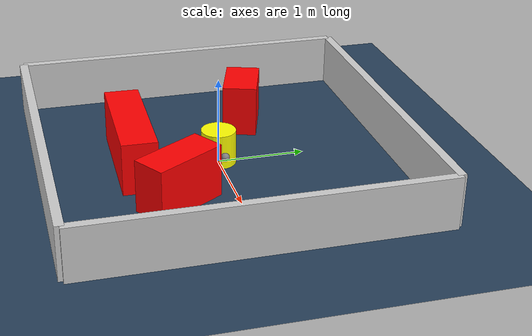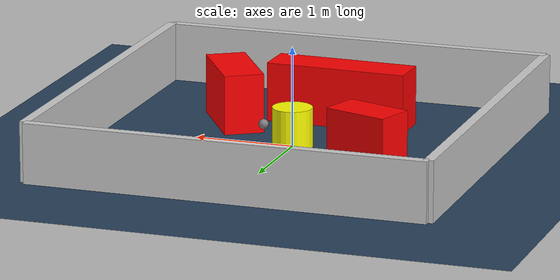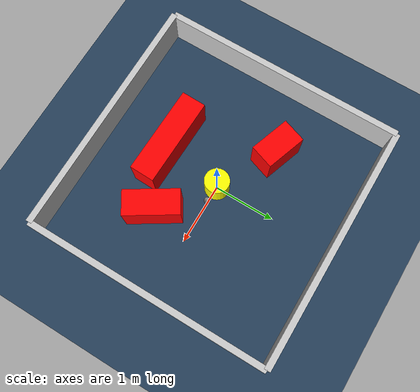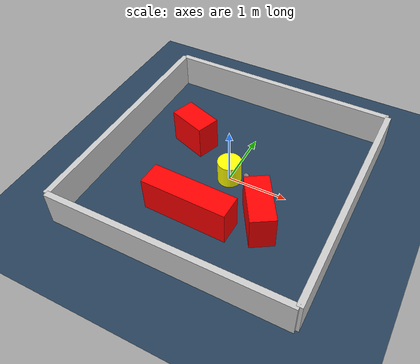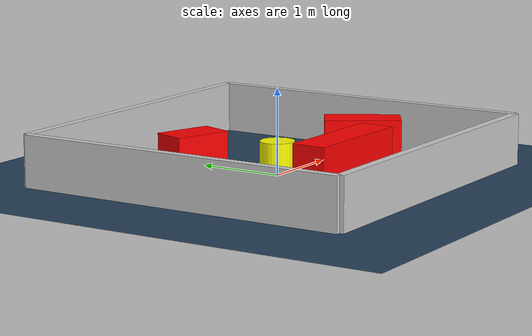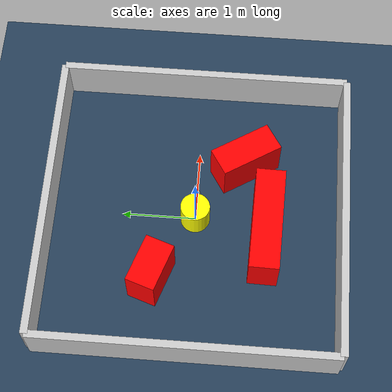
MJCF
<?xml version="1.0" ?>
<mujoco model="generated_environment">
  <option timestep="0.01" integrator="RK4" cone="elliptic"/>
  <default>
    <geom density="1"/>
  </default>
  <asset>
    <texture builtin="gradient" height="3072" rgb1="0.3 0.5 0.7" rgb2="0 0 0" type="skybox" width="512"/>
    <texture builtin="checker" height="300" mark="edge" markrgb="0.8 0.8 0.8" name="groundplane" rgb1="0.2 0.3 0.4" rgb2="0.1 0.2 0.3" type="2d" width="300"/>
    <material name="groundplane" reflectance="0.2" texrepeat="5 5" texture="groundplane" texuniform="true"/>
    <material name="robot" rgba="0.0 1.0 0.0 1"/>
  </asset>
  <worldbody>
    <light dir="0 0 -1" directional="true" pos="0 0 1.5"/>
    <geom condim="4" friction="1.0 0.005 0.001" material="groundplane" name="floor" size="0 0 0.05" type="plane"/>
    <body name="walls">
      <geom name="wall_1" condim="4" pos="-2.0 0.0 0.3" rgba="0.800000011920929 0.800000011920929 0.800000011920929 1.0" size="0.05 2.0 0.3" type="box"/>
      <geom name="wall_2" condim="4" pos="2.0 0.0 0.3" rgba="0.800000011920929 0.800000011920929 0.800000011920929 1.0" size="0.05 2.0 0.3" type="box"/>
      <geom name="wall_3" condim="4" pos="0.0 -2.0 0.3" rgba="0.800000011920929 0.800000011920929 0.800000011920929 1.0" size="2.0 0.05 0.3" type="box"/>
      <geom name="wall_4" condim="4" pos="0.0 2.0 0.3" rgba="0.800000011920929 0.800000011920929 0.800000011920929 1.0" size="2.0 0.05 0.3" type="box"/>
    </body>
    <body name="robot">
      <joint name="joint_x" type="slide" pos="0 0 0" axis="1 0 0"/>
      <joint name="joint_y" type="slide" pos="0 0 0" axis="0 1 0"/>
      <geom name="robot" type="sphere" pos="0.3 0.0 0.2" size="0.05" mass="5." friction="1.0 0.005 0.0001" condim="4" rgba="0.5 0.5 0.5 1.0"/>
      <site name="sensor_ball"/>
    </body>
    <body name="obstacle_movable_1">
      <geom name="obstacle_movable_1" condim="4" pos="0.0 0.0 0.2" euler="0 0 0.0" friction="1.0 0.005 0.001" rgba="1.0 1.0 0.0 1.0" size="0.2 0.2 0.0" type="cylinder" mass="0.1"/>
      <joint type="free"/>
    </body>
    <body name="obstacle_2_static">
      <geom name="obstacle_2_static" condim="4" pos="-0.18026074707090523 -0.9745944885986499 0.3" euler="0 0 358.5467181278605" friction="1.0 0.005 0.001" rgba="1 0 0 1" size="0.717506427230385 0.2 0.3" type="box"/>
    </body>
    <body name="obstacle_3_static">
      <geom name="obstacle_3_static" condim="4" pos="-0.9303659940304478 0.5181781014554481 0.3" euler="0 0 341.03731255853626" friction="1.0 0.005 0.001" rgba="1 0 0 1" size="0.33460868569249497 0.2 0.3" type="box"/>
    </body>
    <body name="obstacle_4_static">
      <geom name="obstacle_4_static" condim="4" pos="0.8270200119338269 -0.6357330746023349 0.3" euler="0 0 122.03557115905757" friction="1.0 0.005 0.001" rgba="1 0 0 1" size="0.4384414913003188 0.2 0.3" type="box"/>
    </body>
  </worldbody>
  <actuator>
    <motor name="actuator_x" joint="joint_x" gear="1" ctrlrange="-1 1"/>
    <motor name="actuator_y" joint="joint_y" gear="1" ctrlrange="-1 1"/>
  </actuator>
</mujoco>
